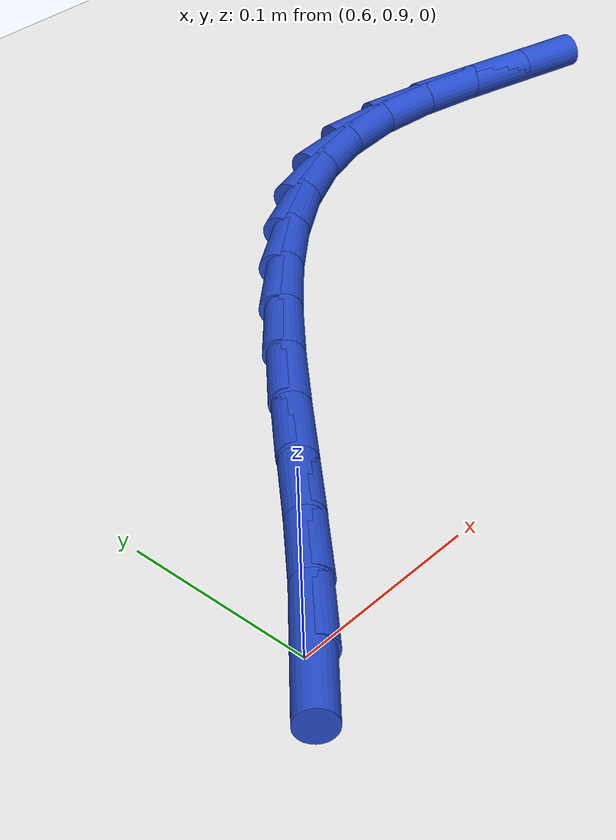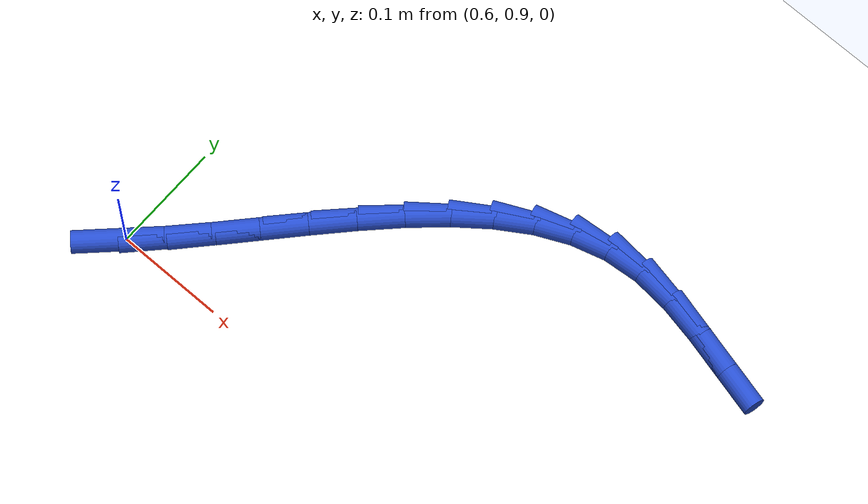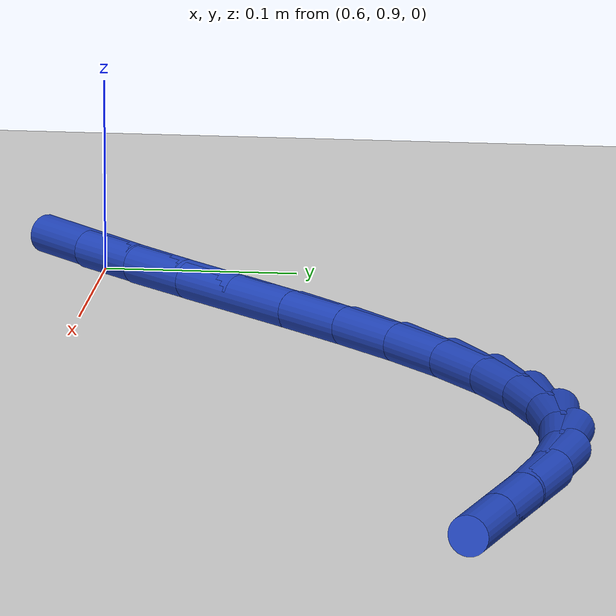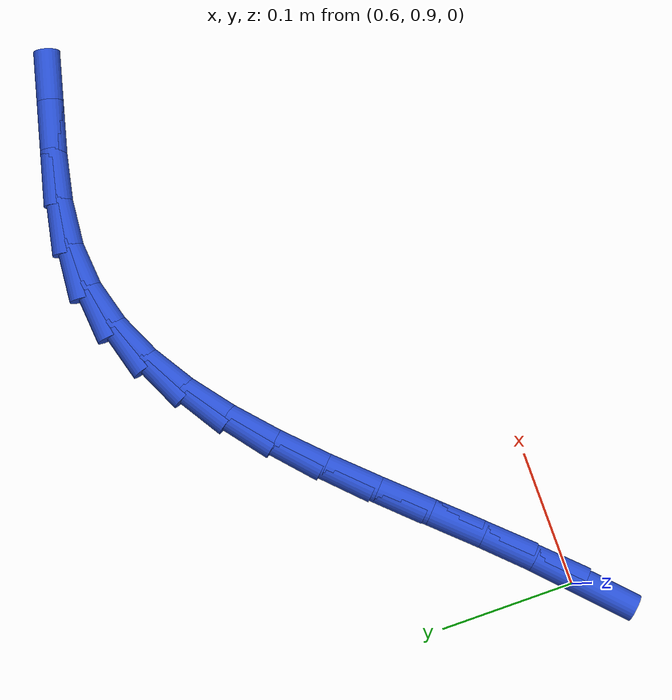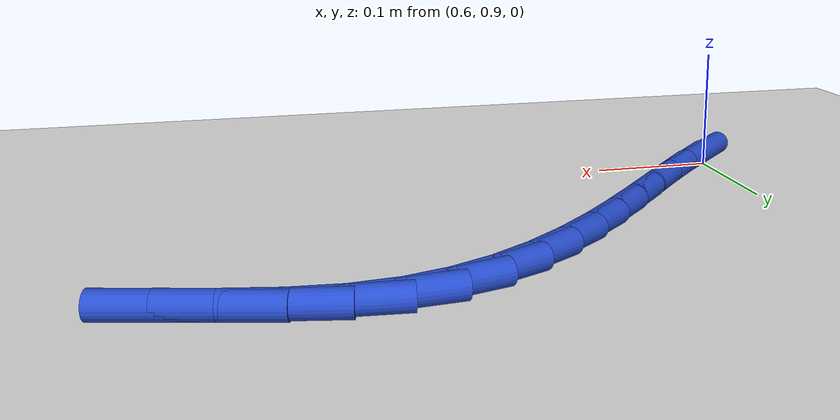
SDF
<sdf version="1.6">
 <world name="default">
  <model name="ground_plane">
   <static>1</static>
   <link name="link">
    <collision name="collision">
     <geometry><plane><normal>0 0 1</normal><size>100 100</size></plane></geometry>
     <surface><friction><ode><mu>100</mu><mu2>50</mu2></ode></friction></surface>
    </collision>
    <visual name="visual">
     <cast_shadows>0</cast_shadows>
     <geometry><plane><normal>0 0 1</normal><size>100 100</size></plane></geometry>
     <material>
      <script><uri>file://media/materials/scripts/gazebo.material</uri><name>Gazebo/WhiteGlow</name></script>
     </material>
    </visual>
   </link>
  </model>
  <model name="line">
   <link name="link_30">
    <pose>0.5976719751265794 0.8923598594718863 0.01 0 1.57 0.7692092500154342</pose>
    <collision name="collision">
     <geometry><cylinder><radius>0.01</radius><length>0.08</length></cylinder></geometry>
    </collision>
    <visual name="visual">
     <material>
      <script><name>Gazebo/Blue</name><uri>file://media/materials/scripts/gazebo.material</uri></script>
     </material>
     <geometry><cylinder><radius>0.01</radius><length>0.08</length></cylinder></geometry>
    </visual>
   </link>
   <link name="link_31">
    <pose>0.6267924940909677 0.9205524602406285 0.01 0 1.57 0.8067644135835703</pose>
    <collision name="collision">
     <geometry><cylinder><radius>0.01</radius><length>0.08</length></cylinder></geometry>
    </collision>
    <visual name="visual">
     <material>
      <script><name>Gazebo/Blue</name><uri>file://media/materials/scripts/gazebo.material</uri></script>
     </material>
     <geometry><cylinder><radius>0.01</radius><length>0.08</length></cylinder></geometry>
    </visual>
   </link>
   <link name="link_32">
    <pose>0.6553558070791505 0.9503631976225067 0.01 0 1.57 0.8269070133763471</pose>
    <collision name="collision">
     <geometry><cylinder><radius>0.01</radius><length>0.08</length></cylinder></geometry>
    </collision>
    <visual name="visual">
     <material>
      <script><name>Gazebo/Blue</name><uri>file://media/materials/scripts/gazebo.material</uri></script>
     </material>
     <geometry><cylinder><radius>0.01</radius><length>0.08</length></cylinder></geometry>
    </visual>
   </link>
   <link name="link_33">
    <pose>0.6835605715791226 0.9810123234538641 0.01 0 1.57 0.8306597712886247</pose>
    <collision name="collision">
     <geometry><cylinder><radius>0.01</radius><length>0.08</length></cylinder></geometry>
    </collision>
    <visual name="visual">
     <material>
      <script><name>Gazebo/Blue</name><uri>file://media/materials/scripts/gazebo.material</uri></script>
     </material>
     <geometry><cylinder><radius>0.01</radius><length>0.08</length></cylinder></geometry>
    </visual>
   </link>
   <link name="link_34">
    <pose>0.7116058944903185 1.0117186582346613 0.01 0 1.57 0.8180619769598371</pose>
    <collision name="collision">
     <geometry><cylinder><radius>0.01</radius><length>0.08</length></cylinder></geometry>
    </collision>
    <visual name="visual">
     <material>
      <script><name>Gazebo/Blue</name><uri>file://media/materials/scripts/gazebo.material</uri></script>
     </material>
     <geometry><cylinder><radius>0.01</radius><length>0.08</length></cylinder></geometry>
    </visual>
   </link>
   <link name="link_35">
    <pose>0.7396908827121714 1.0417010224648573 0.01 0 1.57 0.7880997609549949</pose>
    <collision name="collision">
     <geometry><cylinder><radius>0.01</radius><length>0.08</length></cylinder></geometry>
    </collision>
    <visual name="visual">
     <material>
      <script><name>Gazebo/Blue</name><uri>file://media/materials/scripts/gazebo.material</uri></script>
     </material>
     <geometry><cylinder><radius>0.01</radius><length>0.08</length></cylinder></geometry>
    </visual>
   </link>
   <link name="link_36">
    <pose>0.768014643144116 1.0701782366444128 0.01 0 1.57 0.7386508656800419</pose>
    <collision name="collision">
     <geometry><cylinder><radius>0.01</radius><length>0.08</length></cylinder></geometry>
    </collision>
    <visual name="visual">
     <material>
      <script><name>Gazebo/Blue</name><uri>file://media/materials/scripts/gazebo.material</uri></script>
     </material>
     <geometry><cylinder><radius>0.01</radius><length>0.08</length></cylinder></geometry>
    </visual>
   </link>
   <link name="link_37">
    <pose>0.796776282685586 1.0963691212732876 0.01 0 1.57 0.6664833649199631</pose>
    <collision name="collision">
     <geometry><cylinder><radius>0.01</radius><length>0.08</length></cylinder></geometry>
    </collision>
    <visual name="visual">
     <material>
      <script><name>Gazebo/Blue</name><uri>file://media/materials/scripts/gazebo.material</uri></script>
     </material>
     <geometry><cylinder><radius>0.01</radius><length>0.08</length></cylinder></geometry>
    </visual>
   </link>
   <link name="link_38">
    <pose>0.8261749082360152 1.1194924968514415 0.01 0 1.57 0.5675388949383757</pose>
    <collision name="collision">
     <geometry><cylinder><radius>0.01</radius><length>0.08</length></cylinder></geometry>
    </collision>
    <visual name="visual">
     <material>
      <script><name>Gazebo/Blue</name><uri>file://media/materials/scripts/gazebo.material</uri></script>
     </material>
     <geometry><cylinder><radius>0.01</radius><length>0.08</length></cylinder></geometry>
    </visual>
   </link>
   <link name="link_39">
    <pose>0.8564096266948384 1.1387671838788347 0.01 0 1.57 0.4379968372913615</pose>
    <collision name="collision">
     <geometry><cylinder><radius>0.01</radius><length>0.08</length></cylinder></geometry>
    </collision>
    <visual name="visual">
     <material>
      <script><name>Gazebo/Blue</name><uri>file://media/materials/scripts/gazebo.material</uri></script>
     </material>
     <geometry><cylinder><radius>0.01</radius><length>0.08</length></cylinder></geometry>
    </visual>
   </link>
   <link name="link_40">
    <pose>0.8876795449614888 1.1534120028554269 0.01 0 1.57 0.2767872441954829</pose>
    <collision name="collision">
     <geometry><cylinder><radius>0.01</radius><length>0.08</length></cylinder></geometry>
    </collision>
    <visual name="visual">
     <material>
      <script><name>Gazebo/Blue</name><uri>file://media/materials/scripts/gazebo.material</uri></script>
     </material>
     <geometry><cylinder><radius>0.01</radius><length>0.08</length></cylinder></geometry>
    </visual>
   </link>
   <link name="link_41">
    <pose>0.9201837699354012 1.1626457742811784 0.01 0 1.57 0.08949335892013556</pose>
    <collision name="collision">
     <geometry><cylinder><radius>0.01</radius><length>0.08</length></cylinder></geometry>
    </collision>
    <visual name="visual">
     <material>
      <script><name>Gazebo/Blue</name><uri>file://media/materials/scripts/gazebo.material</uri></script>
     </material>
     <geometry><cylinder><radius>0.01</radius><length>0.08</length></cylinder></geometry>
    </visual>
   </link>
   <link name="link_42">
    <pose>0.9541207168398046 1.1656910399016565 0.01 0 1.57 -0.08751346400719535</pose>
    <collision name="collision">
     <geometry><cylinder><radius>0.01</radius><length>0.08</length></cylinder></geometry>
    </collision>
    <visual name="visual">
     <material>
      <script><name>Gazebo/Blue</name><uri>file://media/materials/scripts/gazebo.material</uri></script>
     </material>
     <geometry><cylinder><radius>0.01</radius><length>0.08</length></cylinder></geometry>
    </visual>
   </link>
   <link name="link_43">
    <pose>0.989537630114699 1.1625836463151902 0.01 0 1.57 -0.19940601137576291</pose>
    <collision name="collision">
     <geometry><cylinder><radius>0.01</radius><length>0.08</length></cylinder></geometry>
    </collision>
    <visual name="visual">
     <material>
      <script><name>Gazebo/Blue</name><uri>file://media/materials/scripts/gazebo.material</uri></script>
     </material>
     <geometry><cylinder><radius>0.01</radius><length>0.08</length></cylinder></geometry>
    </visual>
   </link>
   <link name="link_44">
    <pose>1.0261422172297148 1.1551861625845183 0.01 0 1.57 -0.2503121058701938</pose>
    <collision name="collision">
     <geometry><cylinder><radius>0.01</radius><length>0.08</length></cylinder></geometry>
    </collision>
    <visual name="visual">
     <material>
      <script><name>Gazebo/Blue</name><uri>file://media/materials/scripts/gazebo.material</uri></script>
     </material>
     <geometry><cylinder><radius>0.01</radius><length>0.08</length></cylinder></geometry>
    </visual>
   </link>
   <link name="link_45">
    <pose>1.0635958925514435 1.1456102165160535 0.01 0 1.57 -0.24873682755634025</pose>
    <collision name="collision">
     <geometry><cylinder><radius>0.01</radius><length>0.08</length></cylinder></geometry>
    </collision>
    <visual name="visual">
     <material>
      <script><name>Gazebo/Blue</name><uri>file://media/materials/scripts/gazebo.material</uri></script>
     </material>
     <geometry><cylinder><radius>0.01</radius><length>0.08</length></cylinder></geometry>
    </visual>
   </link>
  </model>
 </world>
</sdf>
